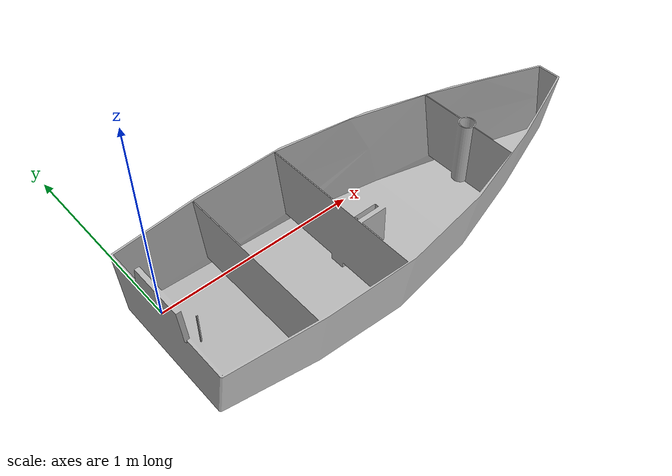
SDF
<?xml version="1.0"?>
<sdf version="1.6">
  <model name="fortune612">
    <link name="base_link"></link>
    <joint name="dummy_joint" type="fixed">
      <pose>0 0 0.210586 0 0 0</pose>
      <parent>base_link</parent>
      <child>hull_link</child>
    </joint>
    <link name="hull_link">
      <frame name="hull"><pose>0 0 0 0 0 0</pose></frame>
      <visual name="hull_visual">
        <pose>0 0 0 0 0 0</pose>
        <geometry>
          <mesh><uri>model://eboat4/meshes/hull_link.dae</uri></mesh>
        </geometry>
      </visual>
      <collision name="hull_collision">
        <pose>0 0 0 0 -0 0</pose>
        <geometry>
          <box><size>2.7 1.0 0.63</size></box>
        </geometry>
      </collision>
      <inertial>
          <pose frame="part_1_frame">0 0 0.73927 0 0 0</pose>
          <mass>83.6871</mass>
          <inertia><ixx>7.79423</ixx><ixy>-0.000716745</ixy><ixz>1.26709</ixz><iyy>42.8173</iyy><iyz>0.00040264</iyz><izz>47.1467</izz></inertia>
      </inertial>
    </link>
  </model>
</sdf>
